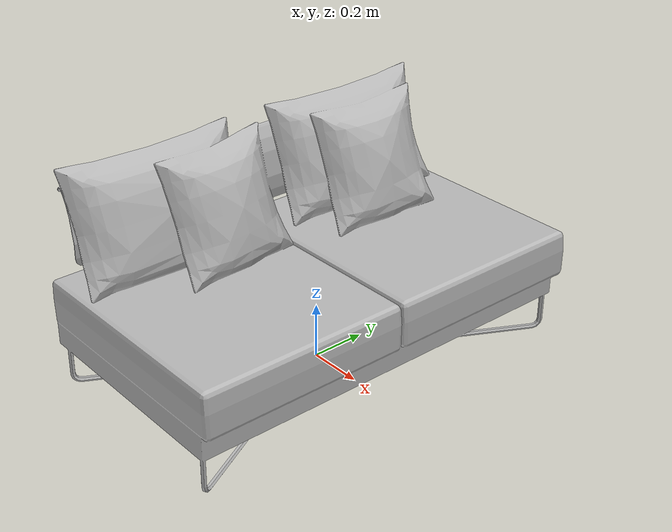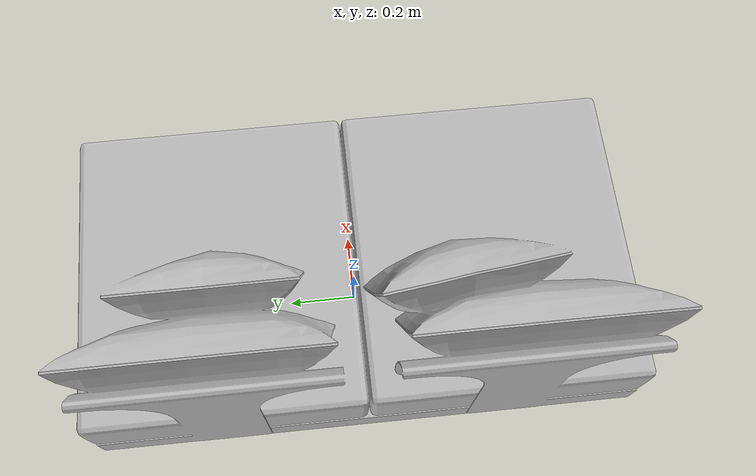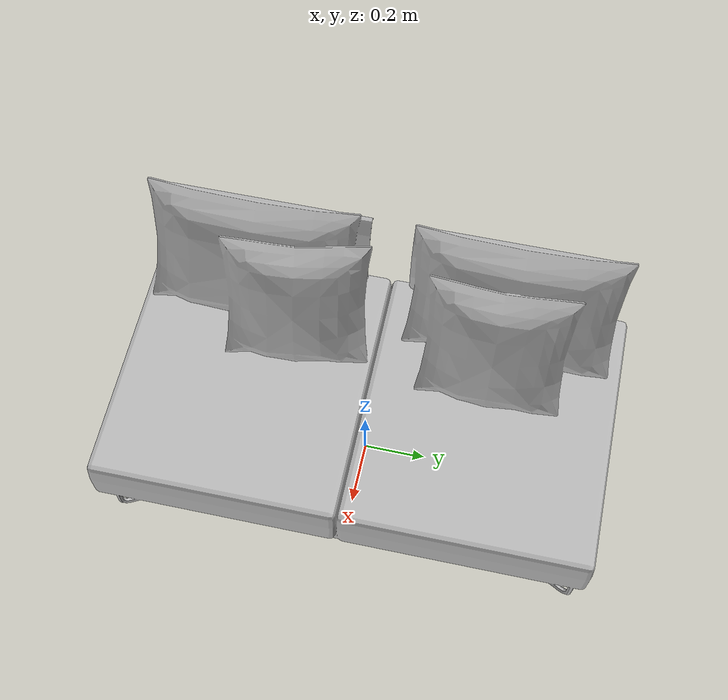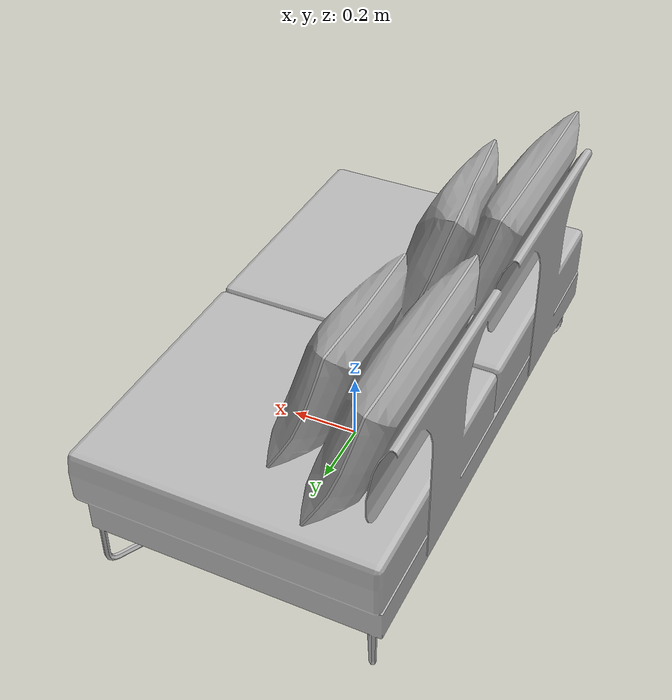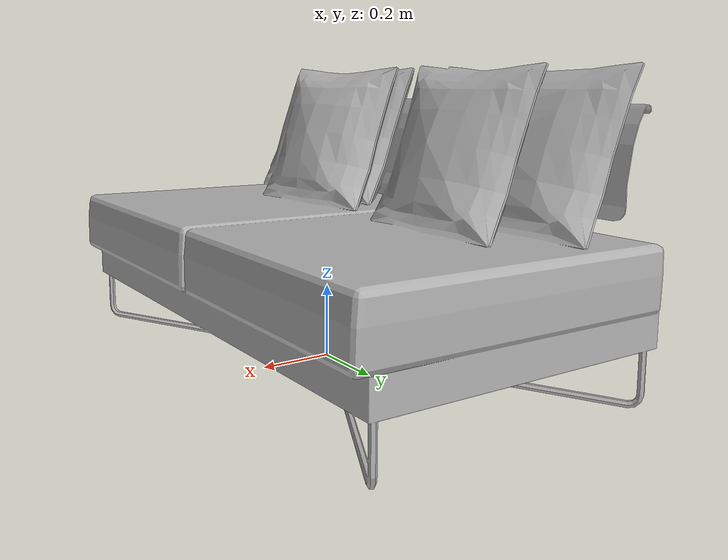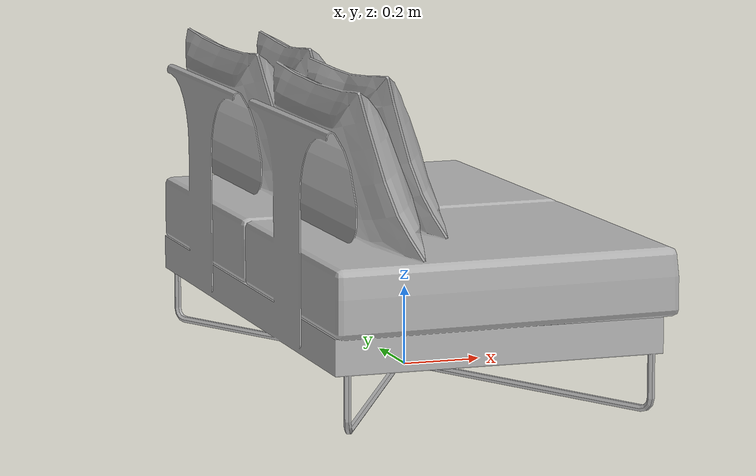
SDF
<?xml version='1.0'?>
<sdf version='1.4'>
  <model name='s__1993'>
    <pose>0 0 0 0 0 0</pose>
    <static>true</static>
    <link name='link'>
      <collision name='collision'>
        <pose>0 0 0 0 0 0</pose>
        <geometry>
          <box>
            <size>0.860002 1.52 2</size>
          </box>
        </geometry>
      </collision>
      <visual name='visual'>
        <pose>0 0 0 0 0 0</pose>
        <geometry>
          <mesh><uri>model://s__1993/s__1993.dae</uri></mesh>
        </geometry>
      </visual>
    </link>
  </model>
</sdf>
